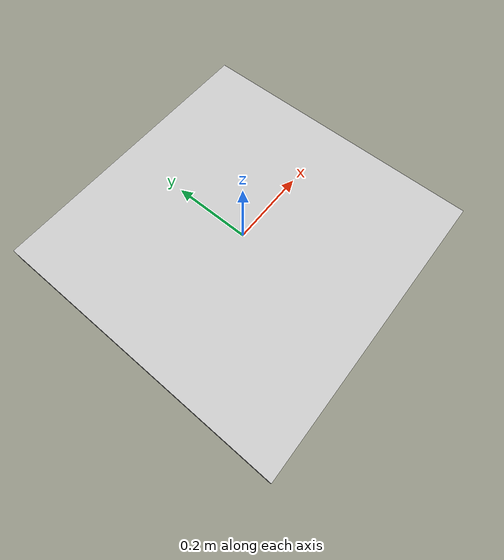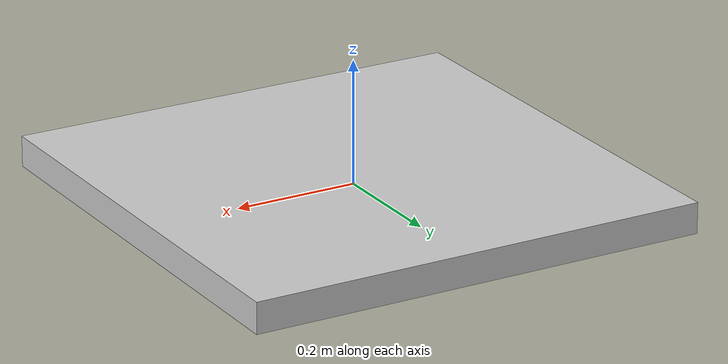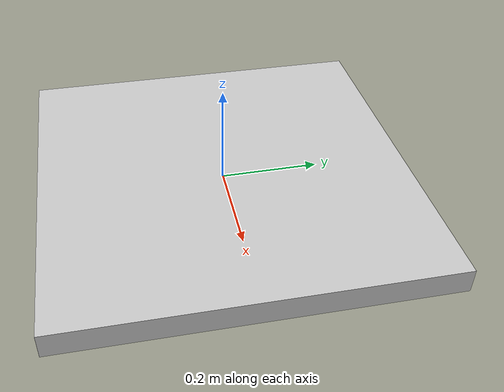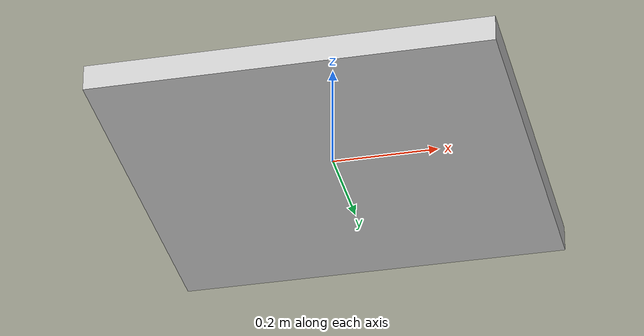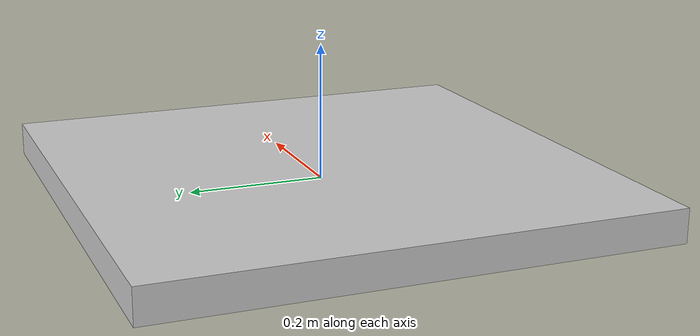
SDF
<?xml version="1.0" ?>
<sdf version="1.9">
  <model name="wave_landing_pad">
    <static>false</static>
    <link name="link">
      <gravity>false</gravity>
      <pose>0 0 0 0 0 0</pose>
      <collision name="collision">
        <geometry>
          <box>
            <size>0.75 0.75 0.05</size>
          </box>
        </geometry>
      </collision>
      <visual name="visual">
        <geometry>
          <box>
            <size>0.75 0.75 0.05</size>
          </box>
        </geometry>
        <material>
          <ambient>0.8 0.8 0.8 1</ambient>
          <diffuse>0.8 0.8 0.8 1</diffuse>
          <specular>0.1 0.1 0.1 1</specular>
          <pbr>
            <metal>
              <albedo_map>materials/textures/SixDof.png</albedo_map>
              <roughness>0.6</roughness>
              <metalness>0</metalness>
            </metal>
          </pbr>
        </material>
      </visual>
    </link>

  </model>
</sdf>
